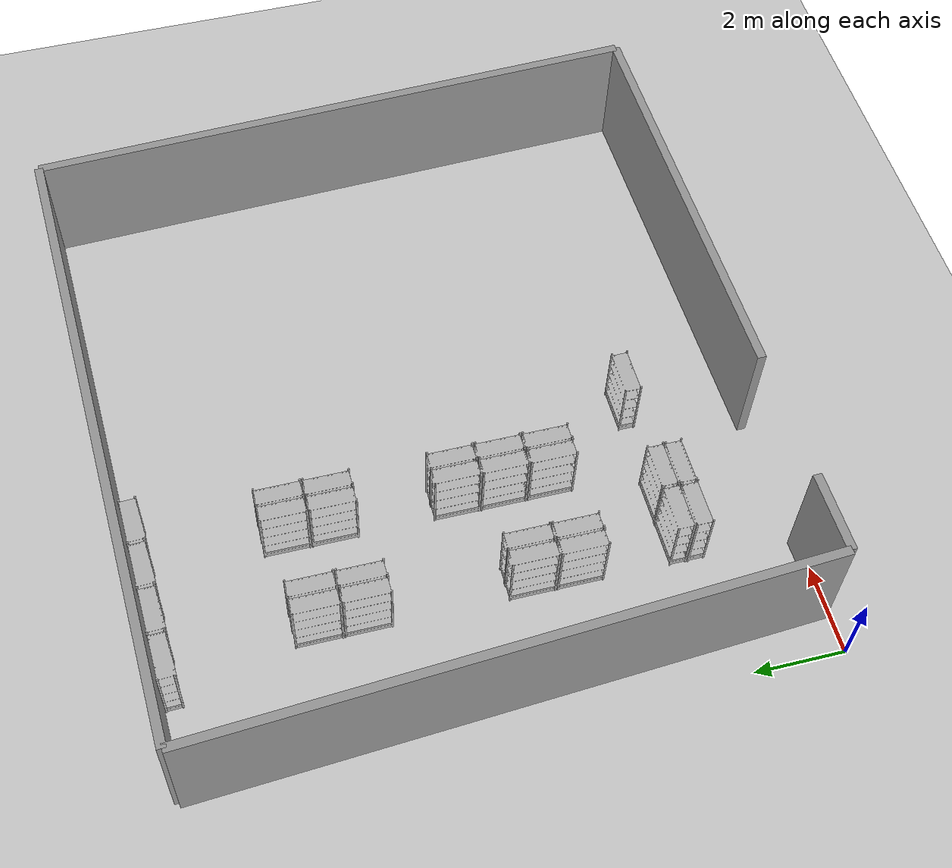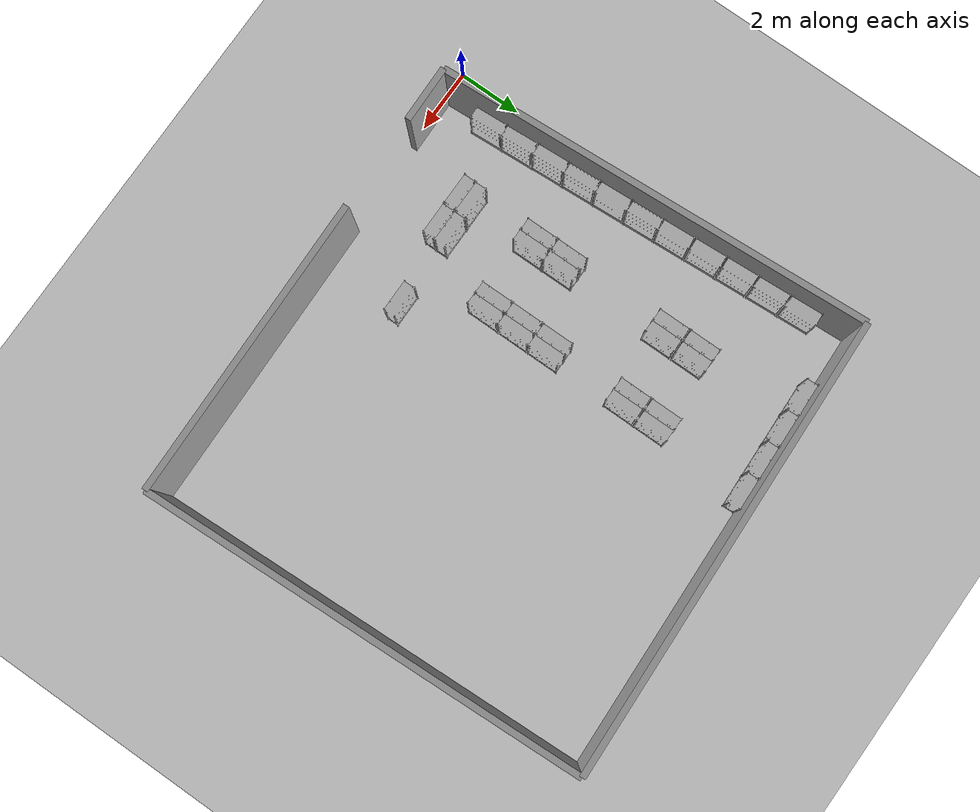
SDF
<sdf version="1.6">
 <world name="default">
  <model name="ground_plane">
   <static>1</static>
   <link name="link">
    <collision name="collision">
     <geometry><plane><normal>0 0 1</normal><size>100 100</size></plane></geometry>
     <surface>
      <contact><collide_bitmask>65535</collide_bitmask></contact>
      <friction><ode><mu>1000</mu><mu2>1000</mu2></ode></friction>
     </surface>
    </collision>
    <visual name="visual">
     <cast_shadows>0</cast_shadows>
     <geometry><plane><normal>0 0 1</normal><size>100 100</size></plane></geometry>
     <material>
      <script><uri>file://media/materials/scripts/gazebo.material</uri><name>Gazebo/Grey</name></script>
     </material>
    </visual>
   </link>
  </model>
  <model name="store_shelf_moduled_18">
   <link name="link">
    <collision name="collision">
     <geometry><mesh><uri>model://store_shelf_moduled/meshes/store_shelf_moduled.dae</uri></mesh></geometry>
    </collision>
    <visual name="visual">
     <geometry><mesh><uri>model://store_shelf_moduled/meshes/store_shelf_moduled.dae</uri></mesh></geometry>
    </visual>
    <inertial>
     <mass>1000</mass>
     <inertia>
      <ixx>840083</ixx>
      <ixy>0</ixy>
      <ixz>0</ixz>
      <iyy>475500</iyy>
      <iyz>0</iyz>
      <izz>1.30208e+06</izz>
     </inertia>
    </inertial>
   </link>
   <static>1</static>
   <pose>6.263823 14.04007 0 0 0 -3.10336</pose>
  </model>
  <model name="store_shelf_moduled_19">
   <link name="link">
    <collision name="collision">
     <geometry><mesh><uri>model://store_shelf_moduled/meshes/store_shelf_moduled.dae</uri></mesh></geometry>
    </collision>
    <visual name="visual">
     <geometry><mesh><uri>model://store_shelf_moduled/meshes/store_shelf_moduled.dae</uri></mesh></geometry>
    </visual>
    <inertial>
     <mass>1000</mass>
     <inertia>
      <ixx>840083</ixx>
      <ixy>0</ixy>
      <ixz>0</ixz>
      <iyy>475500</iyy>
      <iyz>0</iyz>
      <izz>1.30208e+06</izz>
     </inertia>
    </inertial>
   </link>
   <static>1</static>
   <pose>5.203823 14.00007 0 0 0 -3.10336</pose>
  </model>
  <model name="store_shelf_moduled_20">
   <link name="link">
    <collision name="collision">
     <geometry><mesh><uri>model://store_shelf_moduled/meshes/store_shelf_moduled.dae</uri></mesh></geometry>
    </collision>
    <visual name="visual">
     <geometry><mesh><uri>model://store_shelf_moduled/meshes/store_shelf_moduled.dae</uri></mesh></geometry>
    </visual>
    <inertial>
     <mass>1000</mass>
     <inertia>
      <ixx>840083</ixx>
      <ixy>0</ixy>
      <ixz>0</ixz>
      <iyy>475500</iyy>
      <iyz>0</iyz>
      <izz>1.30208e+06</izz>
     </inertia>
    </inertial>
   </link>
   <static>1</static>
   <pose>4.143822 13.96007 0 0 0 -3.10336</pose>
  </model>
  <model name="store_shelf_moduled_21">
   <link name="link">
    <collision name="collision">
     <geometry><mesh><uri>model://store_shelf_moduled/meshes/store_shelf_moduled.dae</uri></mesh></geometry>
    </collision>
    <visual name="visual">
     <geometry><mesh><uri>model://store_shelf_moduled/meshes/store_shelf_moduled.dae</uri></mesh></geometry>
    </visual>
    <inertial>
     <mass>1000</mass>
     <inertia>
      <ixx>840083</ixx>
      <ixy>0</ixy>
      <ixz>0</ixz>
      <iyy>475500</iyy>
      <iyz>0</iyz>
      <izz>1.30208e+06</izz>
     </inertia>
    </inertial>
   </link>
   <static>1</static>
   <pose>3.083822 13.92007 0 0 0 -3.10336</pose>
  </model>
  <model name="store_shelf_moduled_22">
   <link name="link">
    <collision name="collision">
     <geometry><mesh><uri>model://store_shelf_moduled/meshes/store_shelf_moduled.dae</uri></mesh></geometry>
    </collision>
    <visual name="visual">
     <geometry><mesh><uri>model://store_shelf_moduled/meshes/store_shelf_moduled.dae</uri></mesh></geometry>
    </visual>
    <inertial>
     <mass>1000</mass>
     <inertia>
      <ixx>840083</ixx>
      <ixy>0</ixy>
      <ixz>0</ixz>
      <iyy>475500</iyy>
      <iyz>0</iyz>
      <izz>1.30208e+06</izz>
     </inertia>
    </inertial>
   </link>
   <static>1</static>
   <pose>0.2598284 12.85586 0 0 0 -1.51221</pose>
  </model>
  <model name="store_shelf_moduled_23">
   <link name="link">
    <collision name="collision">
     <geometry><mesh><uri>model://store_shelf_moduled/meshes/store_shelf_moduled.dae</uri></mesh></geometry>
    </collision>
    <visual name="visual">
     <geometry><mesh><uri>model://store_shelf_moduled/meshes/store_shelf_moduled.dae</uri></mesh></geometry>
    </visual>
    <inertial>
     <mass>1000</mass>
     <inertia>
      <ixx>840083</ixx>
      <ixy>0</ixy>
      <ixz>0</ixz>
      <iyy>475500</iyy>
      <iyz>0</iyz>
      <izz>1.30208e+06</izz>
     </inertia>
    </inertial>
   </link>
   <static>1</static>
   <pose>0.3198284 11.79586 0 0 0 -1.51221</pose>
  </model>
  <model name="store_shelf_moduled_24">
   <link name="link">
    <collision name="collision">
     <geometry><mesh><uri>model://store_shelf_moduled/meshes/store_shelf_moduled.dae</uri></mesh></geometry>
    </collision>
    <visual name="visual">
     <geometry><mesh><uri>model://store_shelf_moduled/meshes/store_shelf_moduled.dae</uri></mesh></geometry>
    </visual>
    <inertial>
     <mass>1000</mass>
     <inertia>
      <ixx>840083</ixx>
      <ixy>0</ixy>
      <ixz>0</ixz>
      <iyy>475500</iyy>
      <iyz>0</iyz>
      <izz>1.30208e+06</izz>
     </inertia>
    </inertial>
   </link>
   <static>1</static>
   <pose>0.3798284 10.73586 0 0 0 -1.51221</pose>
  </model>
  <model name="store_shelf_moduled_25">
   <link name="link">
    <collision name="collision">
     <geometry><mesh><uri>model://store_shelf_moduled/meshes/store_shelf_moduled.dae</uri></mesh></geometry>
    </collision>
    <visual name="visual">
     <geometry><mesh><uri>model://store_shelf_moduled/meshes/store_shelf_moduled.dae</uri></mesh></geometry>
    </visual>
    <inertial>
     <mass>1000</mass>
     <inertia>
      <ixx>840083</ixx>
      <ixy>0</ixy>
      <ixz>0</ixz>
      <iyy>475500</iyy>
      <iyz>0</iyz>
      <izz>1.30208e+06</izz>
     </inertia>
    </inertial>
   </link>
   <static>1</static>
   <pose>0.4398284 9.675855 0 0 0 -1.51221</pose>
  </model>
  <model name="store_shelf_moduled_26">
   <link name="link">
    <collision name="collision">
     <geometry><mesh><uri>model://store_shelf_moduled/meshes/store_shelf_moduled.dae</uri></mesh></geometry>
    </collision>
    <visual name="visual">
     <geometry><mesh><uri>model://store_shelf_moduled/meshes/store_shelf_moduled.dae</uri></mesh></geometry>
    </visual>
    <inertial>
     <mass>1000</mass>
     <inertia>
      <ixx>840083</ixx>
      <ixy>0</ixy>
      <ixz>0</ixz>
      <iyy>475500</iyy>
      <iyz>0</iyz>
      <izz>1.30208e+06</izz>
     </inertia>
    </inertial>
   </link>
   <static>1</static>
   <pose>0.5098284 8.615855 0 0 0 -1.51221</pose>
  </model>
  <model name="store_shelf_moduled_27">
   <link name="link">
    <collision name="collision">
     <geometry><mesh><uri>model://store_shelf_moduled/meshes/store_shelf_moduled.dae</uri></mesh></geometry>
    </collision>
    <visual name="visual">
     <geometry><mesh><uri>model://store_shelf_moduled/meshes/store_shelf_moduled.dae</uri></mesh></geometry>
    </visual>
    <inertial>
     <mass>1000</mass>
     <inertia>
      <ixx>840083</ixx>
      <ixy>0</ixy>
      <ixz>0</ixz>
      <iyy>475500</iyy>
      <iyz>0</iyz>
      <izz>1.30208e+06</izz>
     </inertia>
    </inertial>
   </link>
   <static>1</static>
   <pose>0.5698284 7.565855 0 0 0 -1.51221</pose>
  </model>
  <model name="store_shelf_moduled_28">
   <link name="link">
    <collision name="collision">
     <geometry><mesh><uri>model://store_shelf_moduled/meshes/store_shelf_moduled.dae</uri></mesh></geometry>
    </collision>
    <visual name="visual">
     <geometry><mesh><uri>model://store_shelf_moduled/meshes/store_shelf_moduled.dae</uri></mesh></geometry>
    </visual>
    <inertial>
     <mass>1000</mass>
     <inertia>
      <ixx>840083</ixx>
      <ixy>0</ixy>
      <ixz>0</ixz>
      <iyy>475500</iyy>
      <iyz>0</iyz>
      <izz>1.30208e+06</izz>
     </inertia>
    </inertial>
   </link>
   <static>1</static>
   <pose>0.6298284 6.505855 0 0 0 -1.51221</pose>
  </model>
  <model name="store_shelf_moduled_29">
   <link name="link">
    <collision name="collision">
     <geometry><mesh><uri>model://store_shelf_moduled/meshes/store_shelf_moduled.dae</uri></mesh></geometry>
    </collision>
    <visual name="visual">
     <geometry><mesh><uri>model://store_shelf_moduled/meshes/store_shelf_moduled.dae</uri></mesh></geometry>
    </visual>
    <inertial>
     <mass>1000</mass>
     <inertia>
      <ixx>840083</ixx>
      <ixy>0</ixy>
      <ixz>0</ixz>
      <iyy>475500</iyy>
      <iyz>0</iyz>
      <izz>1.30208e+06</izz>
     </inertia>
    </inertial>
   </link>
   <static>1</static>
   <pose>0.6898284 5.445855 0 0 0 -1.51221</pose>
  </model>
  <model name="store_shelf_moduled_30">
   <link name="link">
    <collision name="collision">
     <geometry><mesh><uri>model://store_shelf_moduled/meshes/store_shelf_moduled.dae</uri></mesh></geometry>
    </collision>
    <visual name="visual">
     <geometry><mesh><uri>model://store_shelf_moduled/meshes/store_shelf_moduled.dae</uri></mesh></geometry>
    </visual>
    <inertial>
     <mass>1000</mass>
     <inertia>
      <ixx>840083</ixx>
      <ixy>0</ixy>
      <ixz>0</ixz>
      <iyy>475500</iyy>
      <iyz>0</iyz>
      <izz>1.30208e+06</izz>
     </inertia>
    </inertial>
   </link>
   <static>1</static>
   <pose>0.7498284 4.385855 0 0 0 -1.51221</pose>
  </model>
  <model name="store_shelf_moduled_31">
   <link name="link">
    <collision name="collision">
     <geometry><mesh><uri>model://store_shelf_moduled/meshes/store_shelf_moduled.dae</uri></mesh></geometry>
    </collision>
    <visual name="visual">
     <geometry><mesh><uri>model://store_shelf_moduled/meshes/store_shelf_moduled.dae</uri></mesh></geometry>
    </visual>
    <inertial>
     <mass>1000</mass>
     <inertia>
      <ixx>840083</ixx>
      <ixy>0</ixy>
      <ixz>0</ixz>
      <iyy>475500</iyy>
      <iyz>0</iyz>
      <izz>1.30208e+06</izz>
     </inertia>
    </inertial>
   </link>
   <static>1</static>
   <pose>0.8198284 3.325855 0 0 0 -1.51221</pose>
  </model>
  <model name="store_shelf_moduled_32">
   <link name="link">
    <collision name="collision">
     <geometry><mesh><uri>model://store_shelf_moduled/meshes/store_shelf_moduled.dae</uri></mesh></geometry>
    </collision>
    <visual name="visual">
     <geometry><mesh><uri>model://store_shelf_moduled/meshes/store_shelf_moduled.dae</uri></mesh></geometry>
    </visual>
    <inertial>
     <mass>1000</mass>
     <inertia>
      <ixx>840083</ixx>
      <ixy>0</ixy>
      <ixz>0</ixz>
      <iyy>475500</iyy>
      <iyz>0</iyz>
      <izz>1.30208e+06</izz>
     </inertia>
    </inertial>
   </link>
   <static>1</static>
   <pose>0.8798284 2.275855 0 0 0 -1.51221</pose>
  </model>
  <model name="store_shelf_moduled_43">
   <link name="link">
    <collision name="collision">
     <geometry><mesh><uri>model://store_shelf_moduled/meshes/store_shelf_moduled.dae</uri></mesh></geometry>
    </collision>
    <visual name="visual">
     <geometry><mesh><uri>model://store_shelf_moduled/meshes/store_shelf_moduled.dae</uri></mesh></geometry>
    </visual>
    <inertial>
     <mass>1000</mass>
     <inertia>
      <ixx>840083</ixx>
      <ixy>0</ixy>
      <ixz>0</ixz>
      <iyy>475500</iyy>
      <iyz>0</iyz>
      <izz>1.30208e+06</izz>
     </inertia>
    </inertial>
   </link>
   <static>1</static>
   <pose>5.45 9.15 0 0 0 1.570796</pose>
  </model>
  <model name="store_shelf_moduled_44">
   <link name="link">
    <collision name="collision">
     <geometry><mesh><uri>model://store_shelf_moduled/meshes/store_shelf_moduled.dae</uri></mesh></geometry>
    </collision>
    <visual name="visual">
     <geometry><mesh><uri>model://store_shelf_moduled/meshes/store_shelf_moduled.dae</uri></mesh></geometry>
    </visual>
    <inertial>
     <mass>1000</mass>
     <inertia>
      <ixx>840083</ixx>
      <ixy>0</ixy>
      <ixz>0</ixz>
      <iyy>475500</iyy>
      <iyz>0</iyz>
      <izz>1.30208e+06</izz>
     </inertia>
    </inertial>
   </link>
   <static>1</static>
   <pose>5.45 10.21 0 0 0 -1.570796</pose>
  </model>
  <model name="store_shelf_moduled_45">
   <link name="link">
    <collision name="collision">
     <geometry><mesh><uri>model://store_shelf_moduled/meshes/store_shelf_moduled.dae</uri></mesh></geometry>
    </collision>
    <visual name="visual">
     <geometry><mesh><uri>model://store_shelf_moduled/meshes/store_shelf_moduled.dae</uri></mesh></geometry>
    </visual>
    <inertial>
     <mass>1000</mass>
     <inertia>
      <ixx>840083</ixx>
      <ixy>0</ixy>
      <ixz>0</ixz>
      <iyy>475500</iyy>
      <iyz>0</iyz>
      <izz>1.30208e+06</izz>
     </inertia>
    </inertial>
   </link>
   <static>1</static>
   <pose>5.45 10.21 0 0 0 1.570796</pose>
  </model>
  <model name="store_shelf_moduled_46">
   <link name="link">
    <collision name="collision">
     <geometry><mesh><uri>model://store_shelf_moduled/meshes/store_shelf_moduled.dae</uri></mesh></geometry>
    </collision>
    <visual name="visual">
     <geometry><mesh><uri>model://store_shelf_moduled/meshes/store_shelf_moduled.dae</uri></mesh></geometry>
    </visual>
    <inertial>
     <mass>1000</mass>
     <inertia>
      <ixx>840083</ixx>
      <ixy>0</ixy>
      <ixz>0</ixz>
      <iyy>475500</iyy>
      <iyz>0</iyz>
      <izz>1.30208e+06</izz>
     </inertia>
    </inertial>
   </link>
   <static>1</static>
   <pose>5.45 11.27 0 0 0 -1.570796</pose>
  </model>
  <model name="store_shelf_moduled_47">
   <link name="link">
    <collision name="collision">
     <geometry><mesh><uri>model://store_shelf_moduled/meshes/store_shelf_moduled.dae</uri></mesh></geometry>
    </collision>
    <visual name="visual">
     <geometry><mesh><uri>model://store_shelf_moduled/meshes/store_shelf_moduled.dae</uri></mesh></geometry>
    </visual>
    <inertial>
     <mass>1000</mass>
     <inertia>
      <ixx>840083</ixx>
      <ixy>0</ixy>
      <ixz>0</ixz>
      <iyy>475500</iyy>
      <iyz>0</iyz>
      <izz>1.30208e+06</izz>
     </inertia>
    </inertial>
   </link>
   <static>1</static>
   <pose>2.77 2.49 0 0 0 0</pose>
  </model>
  <model name="store_shelf_moduled_48">
   <link name="link">
    <collision name="collision">
     <geometry><mesh><uri>model://store_shelf_moduled/meshes/store_shelf_moduled.dae</uri></mesh></geometry>
    </collision>
    <visual name="visual">
     <geometry><mesh><uri>model://store_shelf_moduled/meshes/store_shelf_moduled.dae</uri></mesh></geometry>
    </visual>
    <inertial>
     <mass>1000</mass>
     <inertia>
      <ixx>840083</ixx>
      <ixy>0</ixy>
      <ixz>0</ixz>
      <iyy>475500</iyy>
      <iyz>0</iyz>
      <izz>1.30208e+06</izz>
     </inertia>
    </inertial>
   </link>
   <static>1</static>
   <pose>3.83 2.49 0 0 0 -3.141593</pose>
  </model>
  <model name="store_shelf_moduled_49">
   <link name="link">
    <collision name="collision">
     <geometry><mesh><uri>model://store_shelf_moduled/meshes/store_shelf_moduled.dae</uri></mesh></geometry>
    </collision>
    <visual name="visual">
     <geometry><mesh><uri>model://store_shelf_moduled/meshes/store_shelf_moduled.dae</uri></mesh></geometry>
    </visual>
    <inertial>
     <mass>1000</mass>
     <inertia>
      <ixx>840083</ixx>
      <ixy>0</ixy>
      <ixz>0</ixz>
      <iyy>475500</iyy>
      <iyz>0</iyz>
      <izz>1.30208e+06</izz>
     </inertia>
    </inertial>
   </link>
   <static>1</static>
   <pose>3.83 2.49 0 0 0 0</pose>
  </model>
  <model name="store_shelf_moduled_50">
   <link name="link">
    <collision name="collision">
     <geometry><mesh><uri>model://store_shelf_moduled/meshes/store_shelf_moduled.dae</uri></mesh></geometry>
    </collision>
    <visual name="visual">
     <geometry><mesh><uri>model://store_shelf_moduled/meshes/store_shelf_moduled.dae</uri></mesh></geometry>
    </visual>
    <inertial>
     <mass>1000</mass>
     <inertia>
      <ixx>840083</ixx>
      <ixy>0</ixy>
      <ixz>0</ixz>
      <iyy>475500</iyy>
      <iyz>0</iyz>
      <izz>1.30208e+06</izz>
     </inertia>
    </inertial>
   </link>
   <static>1</static>
   <pose>4.89 2.49 0 0 0 -3.141593</pose>
  </model>
  <model name="store_shelf_moduled_51">
   <link name="link">
    <collision name="collision">
     <geometry><mesh><uri>model://store_shelf_moduled/meshes/store_shelf_moduled.dae</uri></mesh></geometry>
    </collision>
    <visual name="visual">
     <geometry><mesh><uri>model://store_shelf_moduled/meshes/store_shelf_moduled.dae</uri></mesh></geometry>
    </visual>
    <inertial>
     <mass>1000</mass>
     <inertia>
      <ixx>840083</ixx>
      <ixy>0</ixy>
      <ixz>0</ixz>
      <iyy>475500</iyy>
      <iyz>0</iyz>
      <izz>1.30208e+06</izz>
     </inertia>
    </inertial>
   </link>
   <static>1</static>
   <pose>6.31 2.49 0 0 0 0</pose>
  </model>
  <model name="store_shelf_moduled_57">
   <link name="link">
    <collision name="collision">
     <geometry><mesh><uri>model://store_shelf_moduled/meshes/store_shelf_moduled.dae</uri></mesh></geometry>
    </collision>
    <visual name="visual">
     <geometry><mesh><uri>model://store_shelf_moduled/meshes/store_shelf_moduled.dae</uri></mesh></geometry>
    </visual>
    <inertial>
     <mass>1000</mass>
     <inertia>
      <ixx>840083</ixx>
      <ixy>0</ixy>
      <ixz>0</ixz>
      <iyy>475500</iyy>
      <iyz>0</iyz>
      <izz>1.30208e+06</izz>
     </inertia>
    </inertial>
   </link>
   <static>1</static>
   <pose>3.19 8.93 0 0 0 1.570796</pose>
  </model>
  <model name="store_shelf_moduled_58">
   <link name="link">
    <collision name="collision">
     <geometry><mesh><uri>model://store_shelf_moduled/meshes/store_shelf_moduled.dae</uri></mesh></geometry>
    </collision>
    <visual name="visual">
     <geometry><mesh><uri>model://store_shelf_moduled/meshes/store_shelf_moduled.dae</uri></mesh></geometry>
    </visual>
    <inertial>
     <mass>1000</mass>
     <inertia>
      <ixx>840083</ixx>
      <ixy>0</ixy>
      <ixz>0</ixz>
      <iyy>475500</iyy>
      <iyz>0</iyz>
      <izz>1.30208e+06</izz>
     </inertia>
    </inertial>
   </link>
   <static>1</static>
   <pose>3.19 9.99 0 0 0 -1.570796</pose>
  </model>
  <model name="store_shelf_moduled_59">
   <link name="link">
    <collision name="collision">
     <geometry><mesh><uri>model://store_shelf_moduled/meshes/store_shelf_moduled.dae</uri></mesh></geometry>
    </collision>
    <visual name="visual">
     <geometry><mesh><uri>model://store_shelf_moduled/meshes/store_shelf_moduled.dae</uri></mesh></geometry>
    </visual>
    <inertial>
     <mass>1000</mass>
     <inertia>
      <ixx>840083</ixx>
      <ixy>0</ixy>
      <ixz>0</ixz>
      <iyy>475500</iyy>
      <iyz>0</iyz>
      <izz>1.30208e+06</izz>
     </inertia>
    </inertial>
   </link>
   <static>1</static>
   <pose>3.19 9.99 0 0 0 1.570796</pose>
  </model>
  <model name="store_shelf_moduled_60">
   <link name="link">
    <collision name="collision">
     <geometry><mesh><uri>model://store_shelf_moduled/meshes/store_shelf_moduled.dae</uri></mesh></geometry>
    </collision>
    <visual name="visual">
     <geometry><mesh><uri>model://store_shelf_moduled/meshes/store_shelf_moduled.dae</uri></mesh></geometry>
    </visual>
    <inertial>
     <mass>1000</mass>
     <inertia>
      <ixx>840083</ixx>
      <ixy>0</ixy>
      <ixz>0</ixz>
      <iyy>475500</iyy>
      <iyz>0</iyz>
      <izz>1.30208e+06</izz>
     </inertia>
    </inertial>
   </link>
   <static>1</static>
   <pose>3.19 11.05 0 0 0 -1.570796</pose>
  </model>
  <model name="store_shelf_moduled_63">
   <link name="link">
    <collision name="collision">
     <geometry><mesh><uri>model://store_shelf_moduled/meshes/store_shelf_moduled.dae</uri></mesh></geometry>
    </collision>
    <visual name="visual">
     <geometry><mesh><uri>model://store_shelf_moduled/meshes/store_shelf_moduled.dae</uri></mesh></geometry>
    </visual>
    <inertial>
     <mass>1000</mass>
     <inertia>
      <ixx>840083</ixx>
      <ixy>0</ixy>
      <ixz>0</ixz>
      <iyy>475500</iyy>
      <iyz>0</iyz>
      <izz>1.30208e+06</izz>
     </inertia>
    </inertial>
   </link>
   <static>1</static>
   <pose>5.45 4.33 0 0 0 1.570796</pose>
  </model>
  <model name="store_shelf_moduled_64">
   <link name="link">
    <collision name="collision">
     <geometry><mesh><uri>model://store_shelf_moduled/meshes/store_shelf_moduled.dae</uri></mesh></geometry>
    </collision>
    <visual name="visual">
     <geometry><mesh><uri>model://store_shelf_moduled/meshes/store_shelf_moduled.dae</uri></mesh></geometry>
    </visual>
    <inertial>
     <mass>1000</mass>
     <inertia>
      <ixx>840083</ixx>
      <ixy>0</ixy>
      <ixz>0</ixz>
      <iyy>475500</iyy>
      <iyz>0</iyz>
      <izz>1.30208e+06</izz>
     </inertia>
    </inertial>
   </link>
   <static>1</static>
   <pose>5.45 5.39 0 0 0 -1.570796</pose>
  </model>
  <model name="store_shelf_moduled_65">
   <link name="link">
    <collision name="collision">
     <geometry><mesh><uri>model://store_shelf_moduled/meshes/store_shelf_moduled.dae</uri></mesh></geometry>
    </collision>
    <visual name="visual">
     <geometry><mesh><uri>model://store_shelf_moduled/meshes/store_shelf_moduled.dae</uri></mesh></geometry>
    </visual>
    <inertial>
     <mass>1000</mass>
     <inertia>
      <ixx>840083</ixx>
      <ixy>0</ixy>
      <ixz>0</ixz>
      <iyy>475500</iyy>
      <iyz>0</iyz>
      <izz>1.30208e+06</izz>
     </inertia>
    </inertial>
   </link>
   <static>1</static>
   <pose>5.45 5.39 0 0 0 1.570796</pose>
  </model>
  <model name="store_shelf_moduled_66">
   <link name="link">
    <collision name="collision">
     <geometry><mesh><uri>model://store_shelf_moduled/meshes/store_shelf_moduled.dae</uri></mesh></geometry>
    </collision>
    <visual name="visual">
     <geometry><mesh><uri>model://store_shelf_moduled/meshes/store_shelf_moduled.dae</uri></mesh></geometry>
    </visual>
    <inertial>
     <mass>1000</mass>
     <inertia>
      <ixx>840083</ixx>
      <ixy>0</ixy>
      <ixz>0</ixz>
      <iyy>475500</iyy>
      <iyz>0</iyz>
      <izz>1.30208e+06</izz>
     </inertia>
    </inertial>
   </link>
   <static>1</static>
   <pose>5.45 6.45 0 0 0 -1.570796</pose>
  </model>
  <model name="store_shelf_moduled_67">
   <link name="link">
    <collision name="collision">
     <geometry><mesh><uri>model://store_shelf_moduled/meshes/store_shelf_moduled.dae</uri></mesh></geometry>
    </collision>
    <visual name="visual">
     <geometry><mesh><uri>model://store_shelf_moduled/meshes/store_shelf_moduled.dae</uri></mesh></geometry>
    </visual>
    <inertial>
     <mass>1000</mass>
     <inertia>
      <ixx>840083</ixx>
      <ixy>0</ixy>
      <ixz>0</ixz>
      <iyy>475500</iyy>
      <iyz>0</iyz>
      <izz>1.30208e+06</izz>
     </inertia>
    </inertial>
   </link>
   <static>1</static>
   <pose>5.45 6.45 0 0 0 1.570796</pose>
  </model>
  <model name="store_shelf_moduled_68">
   <link name="link">
    <collision name="collision">
     <geometry><mesh><uri>model://store_shelf_moduled/meshes/store_shelf_moduled.dae</uri></mesh></geometry>
    </collision>
    <visual name="visual">
     <geometry><mesh><uri>model://store_shelf_moduled/meshes/store_shelf_moduled.dae</uri></mesh></geometry>
    </visual>
    <inertial>
     <mass>1000</mass>
     <inertia>
      <ixx>840083</ixx>
      <ixy>0</ixy>
      <ixz>0</ixz>
      <iyy>475500</iyy>
      <iyz>0</iyz>
      <izz>1.30208e+06</izz>
     </inertia>
    </inertial>
   </link>
   <static>1</static>
   <pose>5.45 7.51 0 0 0 -1.570796</pose>
  </model>
  <model name="store_shelf_moduled_73">
   <link name="link">
    <collision name="collision">
     <geometry><mesh><uri>model://store_shelf_moduled/meshes/store_shelf_moduled.dae</uri></mesh></geometry>
    </collision>
    <visual name="visual">
     <geometry><mesh><uri>model://store_shelf_moduled/meshes/store_shelf_moduled.dae</uri></mesh></geometry>
    </visual>
    <inertial>
     <mass>1000</mass>
     <inertia>
      <ixx>840083</ixx>
      <ixy>0</ixy>
      <ixz>0</ixz>
      <iyy>475500</iyy>
      <iyz>0</iyz>
      <izz>1.30208e+06</izz>
     </inertia>
    </inertial>
   </link>
   <static>1</static>
   <pose>3.19 4.33 0 0 0 1.570796</pose>
  </model>
  <model name="store_shelf_moduled_74">
   <link name="link">
    <collision name="collision">
     <geometry><mesh><uri>model://store_shelf_moduled/meshes/store_shelf_moduled.dae</uri></mesh></geometry>
    </collision>
    <visual name="visual">
     <geometry><mesh><uri>model://store_shelf_moduled/meshes/store_shelf_moduled.dae</uri></mesh></geometry>
    </visual>
    <inertial>
     <mass>1000</mass>
     <inertia>
      <ixx>840083</ixx>
      <ixy>0</ixy>
      <ixz>0</ixz>
      <iyy>475500</iyy>
      <iyz>0</iyz>
      <izz>1.30208e+06</izz>
     </inertia>
    </inertial>
   </link>
   <static>1</static>
   <pose>3.19 5.39 0 0 0 -1.570796</pose>
  </model>
  <model name="store_shelf_moduled_75">
   <link name="link">
    <collision name="collision">
     <geometry><mesh><uri>model://store_shelf_moduled/meshes/store_shelf_moduled.dae</uri></mesh></geometry>
    </collision>
    <visual name="visual">
     <geometry><mesh><uri>model://store_shelf_moduled/meshes/store_shelf_moduled.dae</uri></mesh></geometry>
    </visual>
    <inertial>
     <mass>1000</mass>
     <inertia>
      <ixx>840083</ixx>
      <ixy>0</ixy>
      <ixz>0</ixz>
      <iyy>475500</iyy>
      <iyz>0</iyz>
      <izz>1.30208e+06</izz>
     </inertia>
    </inertial>
   </link>
   <static>1</static>
   <pose>3.19 5.39 0 0 0 1.570796</pose>
  </model>
  <model name="store_shelf_moduled_76">
   <link name="link">
    <collision name="collision">
     <geometry><mesh><uri>model://store_shelf_moduled/meshes/store_shelf_moduled.dae</uri></mesh></geometry>
    </collision>
    <visual name="visual">
     <geometry><mesh><uri>model://store_shelf_moduled/meshes/store_shelf_moduled.dae</uri></mesh></geometry>
    </visual>
    <inertial>
     <mass>1000</mass>
     <inertia>
      <ixx>840083</ixx>
      <ixy>0</ixy>
      <ixz>0</ixz>
      <iyy>475500</iyy>
      <iyz>0</iyz>
      <izz>1.30208e+06</izz>
     </inertia>
    </inertial>
   </link>
   <static>1</static>
   <pose>3.19 6.45 0 0 0 -1.570796</pose>
  </model>
  <model name="grey_wall0">
   <static>1</static>
   <link name="link">
    <pose>1.805 0.115 1.4 0 0 0.01675821</pose>
    <visual name="visual">
     <cast_shadows>0</cast_shadows>
     <geometry><box><size>1.790251 0.2 2.8</size></box></geometry>
     <material>
      <name>vrc/grey_wall</name>
      <script>
       <uri>model://grey_wall/materials/scripts</uri>
       <uri>model://grey_wall/materials/textures</uri>
       <name>vrc/grey_wall</name>
      </script>
     </material>
    </visual>
    <collision name="collision">
     <geometry><box><size>1.790251 0.2 2.8</size></box></geometry>
     <max_contacts>5</max_contacts>
    </collision>
   </link>
  </model>
  <model name="grey_wall1">
   <static>1</static>
   <link name="link">
    <pose>10.5 0.265 1.4 0 0 0.01770648</pose>
    <visual name="visual">
     <cast_shadows>0</cast_shadows>
     <geometry><box><size>9.601505 0.2 2.8</size></box></geometry>
     <material>
      <name>vrc/grey_wall</name>
      <script>
       <uri>model://grey_wall/materials/scripts</uri>
       <uri>model://grey_wall/materials/textures</uri>
       <name>vrc/grey_wall</name>
      </script>
     </material>
    </visual>
    <collision name="collision">
     <geometry><box><size>9.601505 0.2 2.8</size></box></geometry>
     <max_contacts>5</max_contacts>
    </collision>
   </link>
  </model>
  <model name="grey_wall2">
   <static>1</static>
   <link name="link">
    <pose>15.02 7.41 1.4 0 0 1.610436</pose>
    <visual name="visual">
     <cast_shadows>0</cast_shadows>
     <geometry><box><size>14.1311 0.2 2.8</size></box></geometry>
     <material>
      <name>vrc/grey_wall</name>
      <script>
       <uri>model://grey_wall/materials/scripts</uri>
       <uri>model://grey_wall/materials/textures</uri>
       <name>vrc/grey_wall</name>
      </script>
     </material>
    </visual>
    <collision name="collision">
     <geometry><box><size>14.1311 0.2 2.8</size></box></geometry>
     <max_contacts>5</max_contacts>
    </collision>
   </link>
  </model>
  <model name="grey_wall3">
   <static>1</static>
   <link name="link">
    <pose>7.42 14.19 1.4 0 0 -3.10336</pose>
    <visual name="visual">
     <cast_shadows>0</cast_shadows>
     <geometry><box><size>14.65071 0.2 2.8</size></box></geometry>
     <material>
      <name>vrc/grey_wall</name>
      <script>
       <uri>model://grey_wall/materials/scripts</uri>
       <uri>model://grey_wall/materials/textures</uri>
       <name>vrc/grey_wall</name>
      </script>
     </material>
    </visual>
    <collision name="collision">
     <geometry><box><size>14.65071 0.2 2.8</size></box></geometry>
     <max_contacts>5</max_contacts>
    </collision>
   </link>
  </model>
  <model name="grey_wall4">
   <static>1</static>
   <link name="link">
    <pose>0.505 7.005 1.4 0 0 -1.51221</pose>
    <visual name="visual">
     <cast_shadows>0</cast_shadows>
     <geometry><box><size>13.83373 0.2 2.8</size></box></geometry>
     <material>
      <name>vrc/grey_wall</name>
      <script>
       <uri>model://grey_wall/materials/scripts</uri>
       <uri>model://grey_wall/materials/textures</uri>
       <name>vrc/grey_wall</name>
      </script>
     </material>
    </visual>
    <collision name="collision">
     <geometry><box><size>13.83373 0.2 2.8</size></box></geometry>
     <max_contacts>5</max_contacts>
    </collision>
   </link>
  </model>
 </world>
</sdf>
